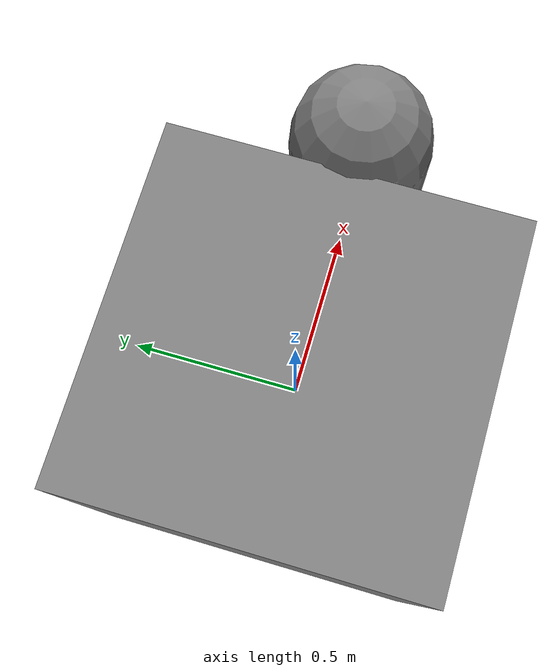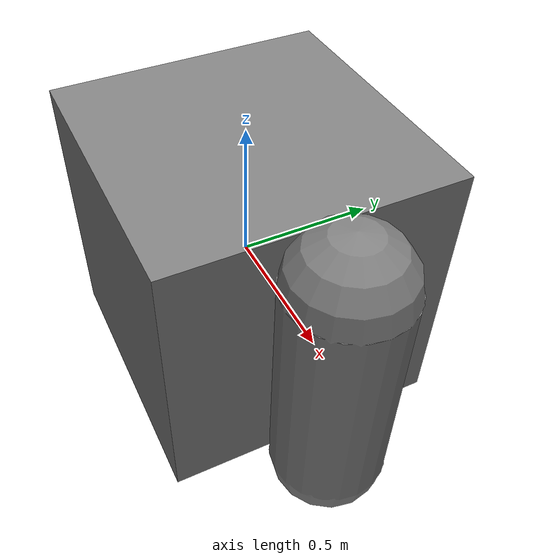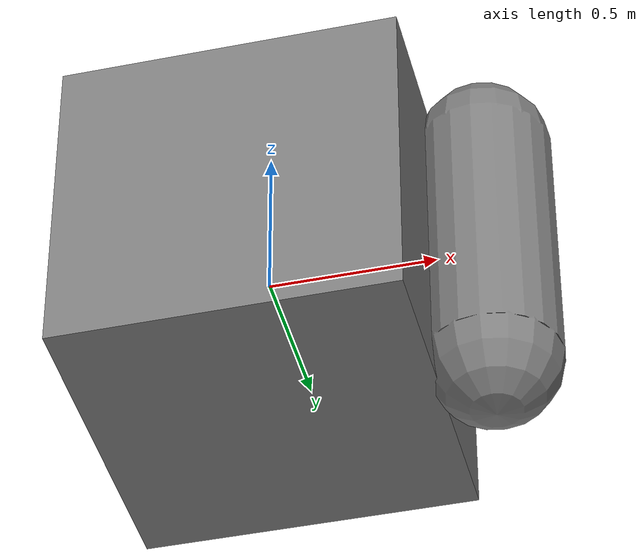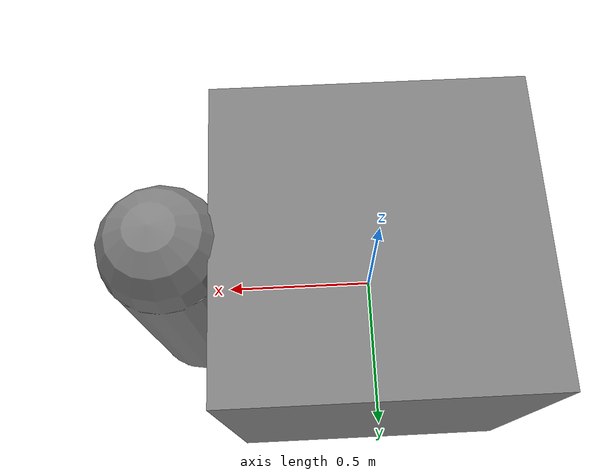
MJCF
<mujoco model="cap_box_face_overlap">
            <option gravity="0 0 0" timestep="0.001"/>
            <worldbody>
                <body name="box" pos="0 0 0">
                    <joint type="free"/>
                    <geom type="box" size="0.5 0.5 0.5"/>
                </body>
                <body name="cap" pos="0.65 0 0">
                    <joint type="free"/>
                    <geom type="capsule" size="0.2 0.4"/>
                </body>
            </worldbody>
        </mujoco>
